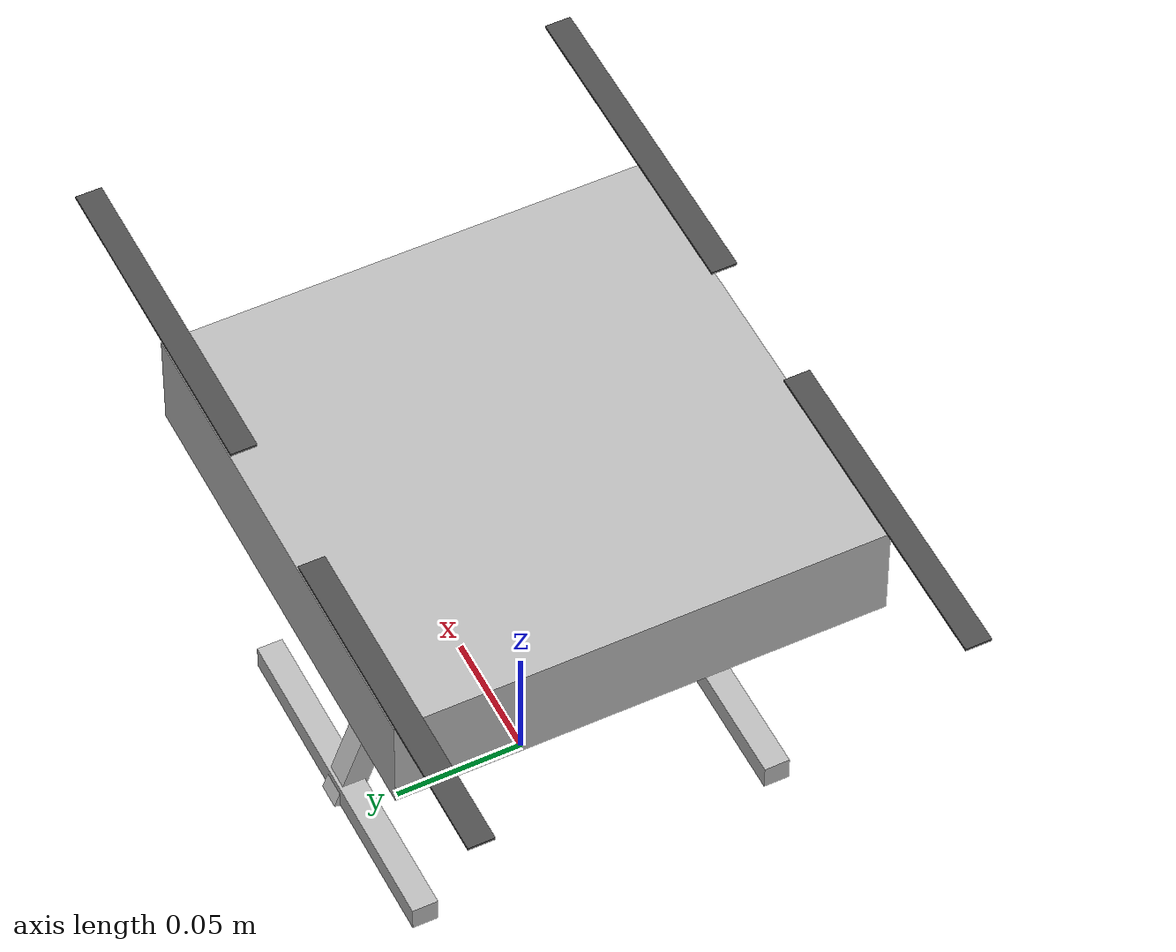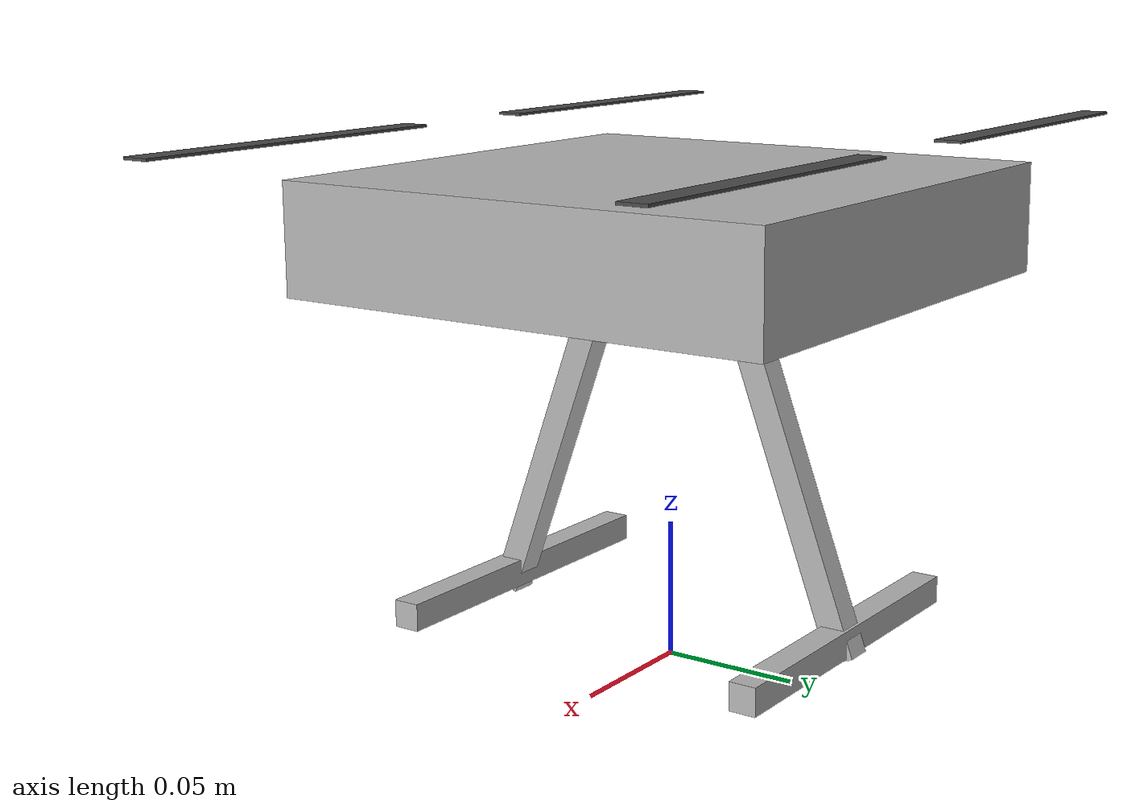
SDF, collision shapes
<?xml version="1.0" encoding="UTF-8"?>
<sdf version='1.9'>
  <model name='kingfisher_neurobem'>
    <include merge='true'>
      <uri>model://kingfisher_base</uri>
    </include>
    <plugin filename="gz-sim-multicopter-motor-model-system" name="gz::sim::systems::MulticopterMotorModel">
      <jointName>rotor_0_joint</jointName>
      <linkName>rotor_0</linkName>
      <turningDirection>ccw</turningDirection>
      <timeConstantUp>0.0125</timeConstantUp>
      <timeConstantDown>0.025</timeConstantDown>
      <maxRotVelocity>2800.0</maxRotVelocity>
      <motorConstant>0.0</motorConstant>
      <momentConstant>0.0</momentConstant>
      <commandSubTopic>command/motor_speed</commandSubTopic>
      <motorNumber>0</motorNumber>
      <rotorDragCoefficient>0.0</rotorDragCoefficient>
      <rollingMomentCoefficient>0.0</rollingMomentCoefficient>
      <rotorVelocitySlowdownSim>10</rotorVelocitySlowdownSim>
      <motorType>velocity</motorType>
    </plugin>
    <!-- Motor 1: back-left, CCW -->
    <plugin filename="gz-sim-multicopter-motor-model-system" name="gz::sim::systems::MulticopterMotorModel">
      <jointName>rotor_1_joint</jointName>
      <linkName>rotor_1</linkName>
      <turningDirection>ccw</turningDirection>
      <timeConstantUp>0.0125</timeConstantUp>
      <timeConstantDown>0.025</timeConstantDown>
      <maxRotVelocity>2800.0</maxRotVelocity>
      <motorConstant>0.0</motorConstant>
      <momentConstant>0.0</momentConstant>
      <commandSubTopic>command/motor_speed</commandSubTopic>
      <motorNumber>1</motorNumber>
      <rotorDragCoefficient>0.0</rotorDragCoefficient>
      <rollingMomentCoefficient>0.0</rollingMomentCoefficient>
      <rotorVelocitySlowdownSim>10</rotorVelocitySlowdownSim>
      <motorType>velocity</motorType>
    </plugin>
    <!-- Motor 2: front-left, CW -->
    <plugin filename="gz-sim-multicopter-motor-model-system" name="gz::sim::systems::MulticopterMotorModel">
      <jointName>rotor_2_joint</jointName>
      <linkName>rotor_2</linkName>
      <turningDirection>cw</turningDirection>
      <timeConstantUp>0.0125</timeConstantUp>
      <timeConstantDown>0.025</timeConstantDown>
      <maxRotVelocity>2800.0</maxRotVelocity>
      <motorConstant>0.0</motorConstant>
      <momentConstant>0.0</momentConstant>
      <commandSubTopic>command/motor_speed</commandSubTopic>
      <motorNumber>2</motorNumber>
      <rotorDragCoefficient>0.0</rotorDragCoefficient>
      <rollingMomentCoefficient>0.0</rollingMomentCoefficient>
      <rotorVelocitySlowdownSim>10</rotorVelocitySlowdownSim>
      <motorType>velocity</motorType>
    </plugin>
    <!-- Motor 3: back-right, CW -->
    <plugin filename="gz-sim-multicopter-motor-model-system" name="gz::sim::systems::MulticopterMotorModel">
      <jointName>rotor_3_joint</jointName>
      <linkName>rotor_3</linkName>
      <turningDirection>cw</turningDirection>
      <timeConstantUp>0.0125</timeConstantUp>
      <timeConstantDown>0.025</timeConstantDown>
      <maxRotVelocity>2800.0</maxRotVelocity>
      <motorConstant>0.0</motorConstant>
      <momentConstant>0.0</momentConstant>
      <commandSubTopic>command/motor_speed</commandSubTopic>
      <motorNumber>3</motorNumber>
      <rotorDragCoefficient>0.0</rotorDragCoefficient>
      <rollingMomentCoefficient>0.0</rollingMomentCoefficient>
      <rotorVelocitySlowdownSim>10</rotorVelocitySlowdownSim>
      <motorType>velocity</motorType>
    </plugin>
    <!-- BEM Aerodynamics: Blade Element Momentum force/torque computation -->
    <plugin filename="BEMMotorPlugin" name="neurogazebo::BEMMotorPlugin">
      <link_name>base_link</link_name>
      <joint_prefix>rotor_</joint_prefix>
      <num_motors>4</num_motors>
    </plugin>
    <!-- NN Residual Dynamics: TensorRT inference for BEM residual correction -->
    <plugin filename="NeuroDynamicsPlugin" name="neurogazebo::NeuroDynamicsPlugin">
      <engine_path>/home/user/neurogazebo/workspace/logs/20260320-104106_bem-nn-body/best_model/network.trt</engine_path>
      <link_name>base_link</link_name>
      <joint_prefix>rotor_</joint_prefix>
      <num_motors>4</num_motors>
      <history_length>20</history_length>
      <update_rate>400</update_rate>
      <scale_factor>1.0</scale_factor>
    </plugin>
  </model>
</sdf>

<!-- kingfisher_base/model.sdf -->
<sdf version='1.9'>
  <!-- Kingfisher quadrotor (NeuroBEM drone)
       Physical params from drone_params_neurobem.yaml
       Visual mesh reused from x500_base -->
  <model name='kingfisher_base'>
    <pose>0 0 .15 0 0 0</pose>
    <self_collide>false</self_collide>
    <static>false</static>
    <link name="base_link">
      <inertial>
        <!-- NeuroBEM: 0.772 kg -->
        <mass>0.772</mass>
        <inertia>
          <ixx>0.0025</ixx>
          <ixy>0</ixy>
          <ixz>0</ixz>
          <iyy>0.0021</iyy>
          <iyz>0</iyz>
          <izz>0.0043</izz>
        </inertia>
      </inertial>
      <gravity>true</gravity>
      <velocity_decay/>
      <!-- Reuse x500 visuals (appearance only, physics decoupled) -->
      <visual name="base_link_visual">
        <pose>0 0 .025 0 0 3.141592654</pose>
        <geometry>
          <mesh>
            <scale>1 1 1</scale>
            <uri>model://x500_base/meshes/NXP-HGD-CF.dae</uri>
          </mesh>
        </geometry>
      </visual>
      <visual name="5010_motor_base_0">
        <pose>0.092 0.092 .032 0 0 -.45</pose>
        <geometry>
          <mesh>
            <scale>0.53 0.53 0.53</scale>
            <uri>model://x500_base/meshes/5010Base.dae</uri>
          </mesh>
        </geometry>
      </visual>
      <visual name="5010_motor_base_1">
        <pose>-0.092 0.092 .032 0 0 -.45</pose>
        <geometry>
          <mesh>
            <scale>0.53 0.53 0.53</scale>
            <uri>model://x500_base/meshes/5010Base.dae</uri>
          </mesh>
        </geometry>
      </visual>
      <visual name="5010_motor_base_2">
        <pose>0.092 -0.092 .032 0 0 -.45</pose>
        <geometry>
          <mesh>
            <scale>0.53 0.53 0.53</scale>
            <uri>model://x500_base/meshes/5010Base.dae</uri>
          </mesh>
        </geometry>
      </visual>
      <visual name="5010_motor_base_3">
        <pose>-0.092 -0.092 .032 0 0 -.45</pose>
        <geometry>
          <mesh>
            <scale>0.53 0.53 0.53</scale>
            <uri>model://x500_base/meshes/5010Base.dae</uri>
          </mesh>
        </geometry>
      </visual>
      <collision name="base_link_collision_0">
        <pose>0 0 .007 0 0 0</pose>
        <geometry>
          <box>
            <size>0.187 0.187 0.04</size>
          </box>
        </geometry>
        <surface>
          <contact>
            <ode>
              <min_depth>0.001</min_depth>
              <max_vel>0</max_vel>
            </ode>
          </contact>
          <friction>
            <ode/>
          </friction>
        </surface>
      </collision>
      <collision name="base_link_collision_1">
        <pose>0 -0.052 -.08 -0.35 0 0</pose>
        <geometry>
          <box>
            <size>0.01 0.01 0.12</size>
          </box>
        </geometry>
        <surface>
          <contact>
            <ode>
              <min_depth>0.001</min_depth>
              <max_vel>0</max_vel>
            </ode>
          </contact>
          <friction>
            <ode/>
          </friction>
        </surface>
      </collision>
      <collision name="base_link_collision_2">
        <pose>0 0.052 -.08 0.35 0 0</pose>
        <geometry>
          <box>
            <size>0.01 0.01 0.12</size>
          </box>
        </geometry>
        <surface>
          <contact>
            <ode>
              <min_depth>0.001</min_depth>
              <max_vel>0</max_vel>
            </ode>
          </contact>
          <friction>
            <ode/>
          </friction>
        </surface>
      </collision>
      <collision name="base_link_collision_3">
        <pose>0 -0.07 -.13 0 0 0</pose>
        <geometry>
          <box>
            <size>0.13 0.01 0.01</size>
          </box>
        </geometry>
        <surface>
          <contact>
            <ode>
              <min_depth>0.001</min_depth>
              <max_vel>0</max_vel>
            </ode>
          </contact>
          <friction>
            <ode/>
          </friction>
        </surface>
      </collision>
      <collision name="base_link_collision_4">
        <pose>0 0.07 -.13 0 0 0</pose>
        <geometry>
          <box>
            <size>0.13 0.01 0.01</size>
          </box>
        </geometry>
        <surface>
          <contact>
            <ode>
              <min_depth>0.001</min_depth>
              <max_vel>0</max_vel>
            </ode>
          </contact>
          <friction>
            <ode/>
          </friction>
        </surface>
      </collision>
      <sensor name="air_pressure_sensor" type="air_pressure">
        <always_on>1</always_on>
        <update_rate>50</update_rate>
        <air_pressure>
          <pressure>
            <noise type="gaussian">
              <mean>0</mean>
              <stddev>3</stddev>
            </noise>
          </pressure>
        </air_pressure>
      </sensor>
      <sensor name="magnetometer_sensor" type="magnetometer">
        <always_on>1</always_on>
        <update_rate>100</update_rate>
        <magnetometer>
          <x><noise type="gaussian"><stddev>0.0001</stddev></noise></x>
          <y><noise type="gaussian"><stddev>0.0001</stddev></noise></y>
          <z><noise type="gaussian"><stddev>0.0001</stddev></noise></z>
        </magnetometer>
      </sensor>
      <sensor name="imu_sensor" type="imu">
        <always_on>1</always_on>
        <update_rate>250</update_rate>
        <imu>
          <angular_velocity>
            <x><noise type="gaussian"><mean>0.0</mean><stddev>0.0008726646</stddev></noise></x>
            <y><noise type="gaussian"><mean>0.0</mean><stddev>0.0008726646</stddev></noise></y>
            <z><noise type="gaussian"><mean>0.0</mean><stddev>0.0008726646</stddev></noise></z>
          </angular_velocity>
          <linear_acceleration>
            <x><noise type="gaussian"><mean>0.0</mean><stddev>0.00637</stddev></noise></x>
            <y><noise type="gaussian"><mean>0.0</mean><stddev>0.00637</stddev></noise></y>
            <z><noise type="gaussian"><mean>0.0</mean><stddev>0.00686</stddev></noise></z>
          </linear_acceleration>
        </imu>
      </sensor>
      <sensor name="navsat_sensor" type="navsat">
        <always_on>1</always_on>
        <update_rate>30</update_rate>
      </sensor>
    </link>
    <!-- Rotor 0: front-right (FR), CCW
         NeuroBEM motor mapping: motor_0 = FR = mot2
         PX4 X-config: rotor_0 at (+x, -y) -->
    <link name="rotor_0">
      <gravity>true</gravity>
      <self_collide>false</self_collide>
      <velocity_decay/>
      <pose>0.092 -0.092 0.04 0 0 0</pose>
      <inertial>
        <mass>0.005</mass>
        <inertia>
          <ixx>1.0e-07</ixx>
          <iyy>4.0e-06</iyy>
          <izz>4.0e-06</izz>
        </inertia>
      </inertial>
      <visual name="rotor_0_visual">
        <pose>-0.012 -0.077 -0.01 0 0 0</pose>
        <geometry>
          <mesh>
            <scale>0.45 0.45 0.45</scale>
            <uri>model://x500_base/meshes/1345_prop_ccw.stl</uri>
          </mesh>
        </geometry>
        <material>
          <script>
            <name>Gazebo/DarkGrey</name>
            <uri>file://media/materials/scripts/gazebo.material</uri>
          </script>
        </material>
      </visual>
      <visual name="rotor_0_visual_motor_bell">
        <pose>0 0 -.02 0 0 0</pose>
        <geometry>
          <mesh>
            <scale>0.53 0.53 0.53</scale>
            <uri>model://x500_base/meshes/5010Bell.dae</uri>
          </mesh>
        </geometry>
      </visual>
      <collision name="rotor_0_collision">
        <pose>0 0 0 0 0 0</pose>
        <geometry>
          <box>
            <size>0.13 0.01 0.001</size>
          </box>
        </geometry>
      </collision>
    </link>
    <joint name="rotor_0_joint" type="revolute">
      <parent>base_link</parent>
      <child>rotor_0</child>
      <axis>
        <xyz>0 0 1</xyz>
        <limit><lower>-1e+16</lower><upper>1e+16</upper></limit>
        <dynamics><spring_reference>0</spring_reference><spring_stiffness>0</spring_stiffness></dynamics>
      </axis>
    </joint>
    <!-- Rotor 1: back-left (BL), CCW -->
    <link name="rotor_1">
      <gravity>true</gravity>
      <self_collide>false</self_collide>
      <velocity_decay/>
      <pose>-0.092 0.092 0.04 0 0 0</pose>
      <inertial>
        <mass>0.005</mass>
        <inertia>
          <ixx>1.0e-07</ixx>
          <iyy>4.0e-06</iyy>
          <izz>4.0e-06</izz>
        </inertia>
      </inertial>
      <visual name="rotor_1_visual">
        <pose>-0.012 -0.077 -0.01 0 0 0</pose>
        <geometry>
          <mesh>
            <scale>0.45 0.45 0.45</scale>
            <uri>model://x500_base/meshes/1345_prop_ccw.stl</uri>
          </mesh>
        </geometry>
        <material>
          <script>
            <name>Gazebo/DarkGrey</name>
            <uri>file://media/materials/scripts/gazebo.material</uri>
          </script>
        </material>
      </visual>
      <visual name="rotor_1_visual_motor_bell">
        <pose>0 0 -.02 0 0 0</pose>
        <geometry>
          <mesh>
            <scale>0.53 0.53 0.53</scale>
            <uri>model://x500_base/meshes/5010Bell.dae</uri>
          </mesh>
        </geometry>
      </visual>
      <collision name="rotor_1_collision">
        <pose>0 0 0 0 0 0</pose>
        <geometry>
          <box>
            <size>0.13 0.01 0.001</size>
          </box>
        </geometry>
      </collision>
    </link>
    <joint name="rotor_1_joint" type="revolute">
      <parent>base_link</parent>
      <child>rotor_1</child>
      <axis>
        <xyz>0 0 1</xyz>
        <limit><lower>-1e+16</lower><upper>1e+16</upper></limit>
        <dynamics><spring_reference>0</spring_reference><spring_stiffness>0</spring_stiffness></dynamics>
      </axis>
    </joint>
    <!-- Rotor 2: front-left (FL), CW -->
    <link name="rotor_2">
      <gravity>true</gravity>
      <self_collide>false</self_collide>
      <velocity_decay/>
      <pose>0.092 0.092 0.04 0 0 0</pose>
      <inertial>
        <mass>0.005</mass>
        <inertia>
          <ixx>1.0e-07</ixx>
          <iyy>4.0e-06</iyy>
          <izz>4.0e-06</izz>
        </inertia>
      </inertial>
      <visual name="rotor_2_visual">
        <pose>-0.012 -0.077 -0.01 0 0 0</pose>
        <geometry>
          <mesh>
            <scale>0.45 0.45 0.45</scale>
            <uri>model://x500_base/meshes/1345_prop_cw.stl</uri>
          </mesh>
        </geometry>
        <material>
          <script>
            <name>Gazebo/DarkGrey</name>
            <uri>file://media/materials/scripts/gazebo.material</uri>
          </script>
        </material>
      </visual>
      <visual name="rotor_2_visual_motor_bell">
        <pose>0 0 -.02 0 0 0</pose>
        <geometry>
          <mesh>
            <scale>0.53 0.53 0.53</scale>
            <uri>model://x500_base/meshes/5010Bell.dae</uri>
          </mesh>
        </geometry>
      </visual>
      <collision name="rotor_2_collision">
        <pose>0 0 0 0 0 0</pose>
        <geometry>
          <box>
            <size>0.13 0.01 0.001</size>
          </box>
        </geometry>
      </collision>
    </link>
    <joint name="rotor_2_joint" type="revolute">
      <parent>base_link</parent>
      <child>rotor_2</child>
      <axis>
        <xyz>0 0 1</xyz>
        <limit><lower>-1e+16</lower><upper>1e+16</upper></limit>
        <dynamics><spring_reference>0</spring_reference><spring_stiffness>0</spring_stiffness></dynamics>
      </axis>
    </joint>
    <!-- Rotor 3: back-right (BR), CW -->
    <link name="rotor_3">
      <gravity>true</gravity>
      <self_collide>false</self_collide>
      <velocity_decay/>
      <pose>-0.092 -0.092 0.04 0 0 0</pose>
      <inertial>
        <mass>0.005</mass>
        <inertia>
          <ixx>1.0e-07</ixx>
          <iyy>4.0e-06</iyy>
          <izz>4.0e-06</izz>
        </inertia>
      </inertial>
      <visual name="rotor_3_visual">
        <pose>-0.012 -0.077 -0.01 0 0 0</pose>
        <geometry>
          <mesh>
            <scale>0.45 0.45 0.45</scale>
            <uri>model://x500_base/meshes/1345_prop_cw.stl</uri>
          </mesh>
        </geometry>
        <material>
          <script>
            <name>Gazebo/DarkGrey</name>
            <uri>file://media/materials/scripts/gazebo.material</uri>
          </script>
        </material>
      </visual>
      <visual name="rotor_3_visual_motor_bell">
        <pose>0 0 -.02 0 0 0</pose>
        <geometry>
          <mesh>
            <scale>0.53 0.53 0.53</scale>
            <uri>model://x500_base/meshes/5010Bell.dae</uri>
          </mesh>
        </geometry>
      </visual>
      <collision name="rotor_3_collision">
        <pose>0 0 0 0 0 0</pose>
        <geometry>
          <box>
            <size>0.13 0.01 0.001</size>
          </box>
        </geometry>
      </collision>
    </link>
    <joint name="rotor_3_joint" type="revolute">
      <parent>base_link</parent>
      <child>rotor_3</child>
      <axis>
        <xyz>0 0 1</xyz>
        <limit><lower>-1e+16</lower><upper>1e+16</upper></limit>
        <dynamics><spring_reference>0</spring_reference><spring_stiffness>0</spring_stiffness></dynamics>
      </axis>
    </joint>
  </model>
</sdf>
